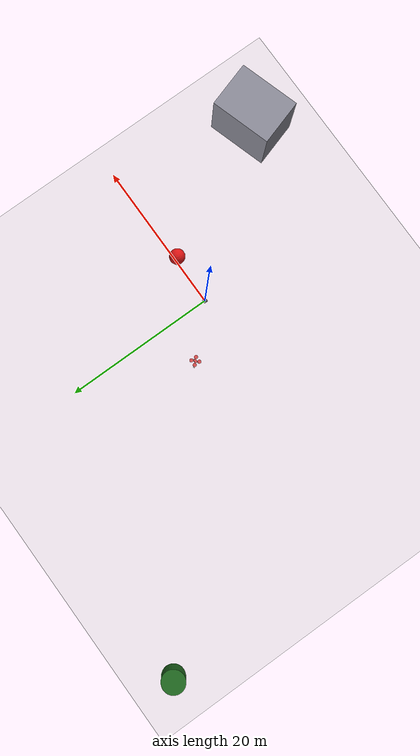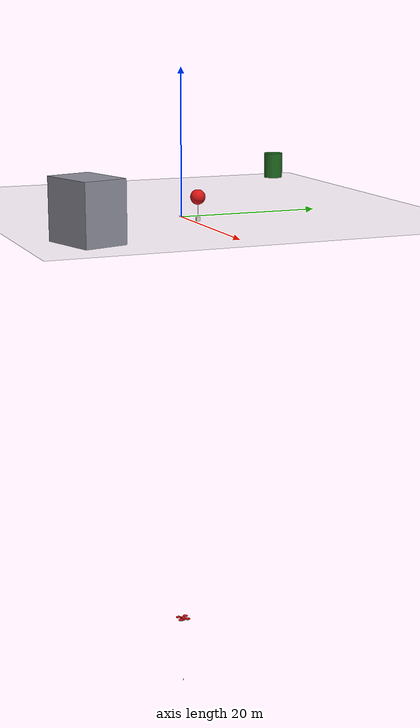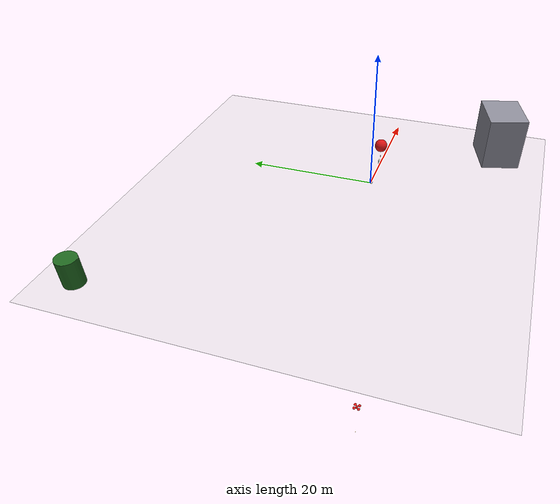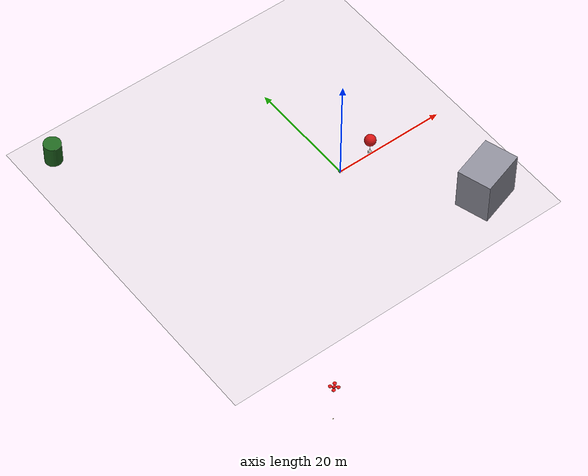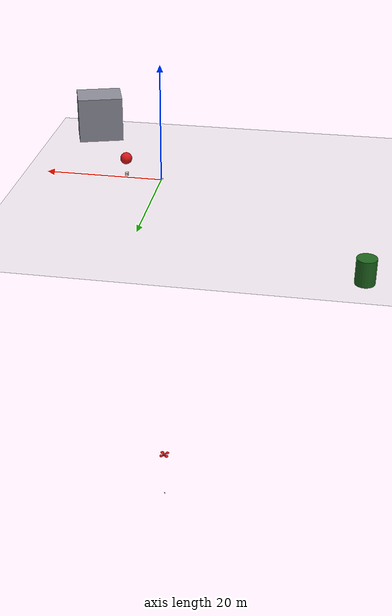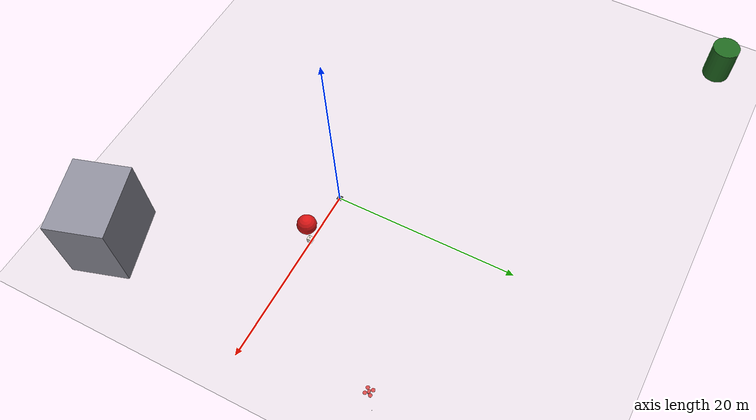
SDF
<?xml version="1.0"?>

<sdf version="1.6">
  <world name="attach">
    <include><uri>model://sun</uri></include>
    <include><uri>model://ground_plane</uri></include>
    <physics type="ode">
      <max_step_size>0.004</max_step_size>
      <real_time_factor>1</real_time_factor>
      <real_time_update_rate>500</real_time_update_rate>
    </physics>
    <scene>
      <ambient>0.55 0.55 0.55 1</ambient>
      <background>0.55 0.72 0.92 1</background>
      <shadows>false</shadows>
      <sky>
        <time>12</time>
        <clouds><speed>4</speed><humidity>0.6</humidity><mean_size>0.6</mean_size></clouds>
      </sky>
    </scene>

    <model name="bg_tree1"><static>true</static><pose>-35 30 2 0 0 0</pose>
      <link name="l"><visual name="v"><geometry><cylinder><radius>1.5</radius><length>4</length></cylinder></geometry>
        <material><ambient>0.1 0.35 0.1 1</ambient><diffuse>0.12 0.4 0.12 1</diffuse></material></visual></link></model>
    <model name="bg_bldg"><static>true</static><pose>15 -18 4 0 0 0.3</pose>
      <link name="l"><visual name="v"><geometry><box><size>8 6 8</size></box></geometry>
        <material><ambient>0.5 0.5 0.55 1</ambient><diffuse>0.55 0.55 0.6 1</diffuse></material></visual></link></model>

    <model name="balloon">
      <pose>6 0 3.5 0 0 0</pose>
      <link name="link">
        <gravity>false</gravity>
        <kinematic>true</kinematic>
        <visual name="v">
          <geometry><sphere><radius>1.0</radius></sphere></geometry>
          <material><ambient>0.7 0.05 0.05 1</ambient><diffuse>0.85 0.08 0.08 1</diffuse>
            <specular>0.3 0.3 0.3 1</specular></material>
        </visual>
        <visual name="bag">
          <pose>0 0 -2.9 0 0 0</pose>
          <geometry><box><size>0.5 0.5 0.6</size></box></geometry>
          <material><ambient>0.85 0.85 0.8 1</ambient><diffuse>0.85 0.85 0.8 1</diffuse></material>
        </visual>
        <visual name="string">
          <pose>0 0 -1.8 0 0 0</pose>
          <geometry><cylinder><radius>0.012</radius><length>1.6</length></cylinder></geometry>
          <material><ambient>0.9 0.9 0.9 1</ambient><diffuse>0.9 0.9 0.9 1</diffuse></material>
        </visual>
      </link>
    </model>

    <model name="drone_tgt">
      <pose>0 0 -60 0 0 0</pose>
      <link name="link">
        <gravity>false</gravity>
        <kinematic>true</kinematic>
        <visual name="body"><geometry><box><size>0.7 0.5 0.3</size></box></geometry>
          <material><ambient>0.7 0.05 0.05 1</ambient><diffuse>0.85 0.08 0.08 1</diffuse></material></visual>
        <visual name="arm1"><pose>0 0 0 0 0 0.785</pose><geometry><box><size>1.5 0.08 0.06</size></box></geometry>
          <material><ambient>0.12 0.12 0.12 1</ambient><diffuse>0.15 0.15 0.15 1</diffuse></material></visual>
        <visual name="arm2"><pose>0 0 0 0 0 -0.785</pose><geometry><box><size>1.5 0.08 0.06</size></box></geometry>
          <material><ambient>0.12 0.12 0.12 1</ambient><diffuse>0.15 0.15 0.15 1</diffuse></material></visual>
        <visual name="r1"><pose>0.53 0.53 0.06 0 0 0</pose><geometry><cylinder><radius>0.36</radius><length>0.05</length></cylinder></geometry>
          <material><ambient>0.7 0.05 0.05 1</ambient><diffuse>0.85 0.08 0.08 1</diffuse></material></visual>
        <visual name="r2"><pose>0.53 -0.53 0.06 0 0 0</pose><geometry><cylinder><radius>0.36</radius><length>0.05</length></cylinder></geometry>
          <material><ambient>0.7 0.05 0.05 1</ambient><diffuse>0.85 0.08 0.08 1</diffuse></material></visual>
        <visual name="r3"><pose>-0.53 0.53 0.06 0 0 0</pose><geometry><cylinder><radius>0.36</radius><length>0.05</length></cylinder></geometry>
          <material><ambient>0.7 0.05 0.05 1</ambient><diffuse>0.85 0.08 0.08 1</diffuse></material></visual>
        <visual name="r4"><pose>-0.53 -0.53 0.06 0 0 0</pose><geometry><cylinder><radius>0.36</radius><length>0.05</length></cylinder></geometry>
          <material><ambient>0.7 0.05 0.05 1</ambient><diffuse>0.85 0.08 0.08 1</diffuse></material></visual>
        <visual name="cam"><pose>0.38 0 -0.12 0 0 0</pose><geometry><sphere><radius>0.09</radius></sphere></geometry>
          <material><ambient>0.1 0.1 0.1 1</ambient></material></visual>
      </link>
    </model>

    <model name="tag">
      <pose>0 0 -70 0 0 0</pose>
      <link name="link">
        <gravity>false</gravity>
        <kinematic>true</kinematic>
        <visual name="armL"><pose>0.08 0.075 0 0 0 0.75</pose><geometry><box><size>0.22 0.012 0.012</size></box></geometry>
          <material><ambient>0.75 0.75 0.78 1</ambient><diffuse>0.8 0.8 0.82 1</diffuse></material></visual>
        <visual name="armR"><pose>0.08 -0.075 0 0 0 -0.75</pose><geometry><box><size>0.22 0.012 0.012</size></box></geometry>
          <material><ambient>0.75 0.75 0.78 1</ambient><diffuse>0.8 0.8 0.82 1</diffuse></material></visual>
        <visual name="clip"><pose>0 0 0 1.5708 0 0</pose><geometry><cylinder><radius>0.03</radius><length>0.02</length></cylinder></geometry>
          <material><ambient>0.3 0.3 0.32 1</ambient></material></visual>
        <visual name="board"><pose>-0.02 0 -0.11 0 0 0</pose><geometry><box><size>0.12 0.08 0.17</size></box></geometry>
          <material><ambient>1.0 0.72 0.0 1</ambient><diffuse>1.0 0.72 0.0 1</diffuse><emissive>0.35 0.25 0 1</emissive></material></visual>
        <visual name="led"><pose>-0.02 0.042 -0.06 0 0 0</pose><geometry><sphere><radius>0.012</radius></sphere></geometry>
          <material><ambient>0 1 0.2 1</ambient><emissive>0 0.9 0.2 1</emissive></material></visual>
      </link>
    </model>

    <model name="chasecam">
      <pose>-6 0 3 0 0 0</pose>
      <link name="l">
        <gravity>false</gravity>
        <kinematic>true</kinematic>
        <sensor name="chase_cam" type="camera">
          <always_on>true</always_on>
          <update_rate>9</update_rate>
          <camera>
            <horizontal_fov>1.2</horizontal_fov>
            <image><width>960</width><height>540</height><format>R8G8B8</format></image>
            <clip><near>0.1</near><far>300</far></clip>
          </camera>
        </sensor>
      </link>
    </model>

    <model name="interceptor">
      <pose>0 0 0.1 0 0 0</pose>
      <link name="body">
        <gravity>false</gravity>
        <kinematic>true</kinematic>
        <visual name="frame">
          <geometry><box><size>0.5 0.5 0.1</size></box></geometry>
          <material><ambient>0.15 0.15 0.15 1</ambient><diffuse>0.2 0.2 0.2 1</diffuse></material>
        </visual>
        <visual name="arm1"><pose>0 0 0 0 0 0.785</pose>
          <geometry><box><size>0.45 0.03 0.02</size></box></geometry>
          <material><ambient>0.1 0.1 0.1 1</ambient></material></visual>
        <visual name="arm2"><pose>0 0 0 0 0 -0.785</pose>
          <geometry><box><size>0.45 0.03 0.02</size></box></geometry>
          <material><ambient>0.1 0.1 0.1 1</ambient></material></visual>
        <visual name="rod"><pose>0.385 0 -0.06 0 0 0</pose>
          <geometry><box><size>0.47 0.016 0.016</size></box></geometry>
          <material><ambient>0.08 0.08 0.08 1</ambient><diffuse>0.1 0.1 0.1 1</diffuse></material></visual>
        <visual name="nose"><pose>0.14 0 0 0 0 0</pose>
          <geometry><box><size>0.05 0.06 0.05</size></box></geometry>
          <material><ambient>0.95 0.55 0.05 1</ambient><diffuse>0.95 0.55 0.05 1</diffuse></material></visual>
        <sensor name="cam" type="camera">
          <pose>0.16 0 0.02 0 -0.349 0</pose>
          <always_on>true</always_on>
          <update_rate>9</update_rate>
          <camera>
            <horizontal_fov>1.0856</horizontal_fov>
            <image><width>160</width><height>120</height><format>R8G8B8</format></image>
            <clip><near>0.05</near><far>300</far></clip>
            <noise><type>gaussian</type><mean>0</mean><stddev>0.01</stddev></noise>
          </camera>
        </sensor>
      </link>
      <plugin name="arms_bridge" filename="libarms_bridge.so">
        <camera>cam</camera>
        <balloon>balloon</balloon>
        <max_angle_deg>35</max_angle_deg>
        <full_stick_rate_dps>400</full_stick_rate_dps>
        <hover_thr>0.5</hover_thr>
        <hit_radius>1.2</hit_radius>
        <tag>tag</tag>
        <tip_x>0.62</tip_x>
        <tip_z>-0.06</tip_z>
        <rope_top>-1.0</rope_top>
        <rope_bottom>-2.6</rope_bottom>
        <catch_r>0.13</catch_r>
      </plugin>
    </model>
  </world>
</sdf>
